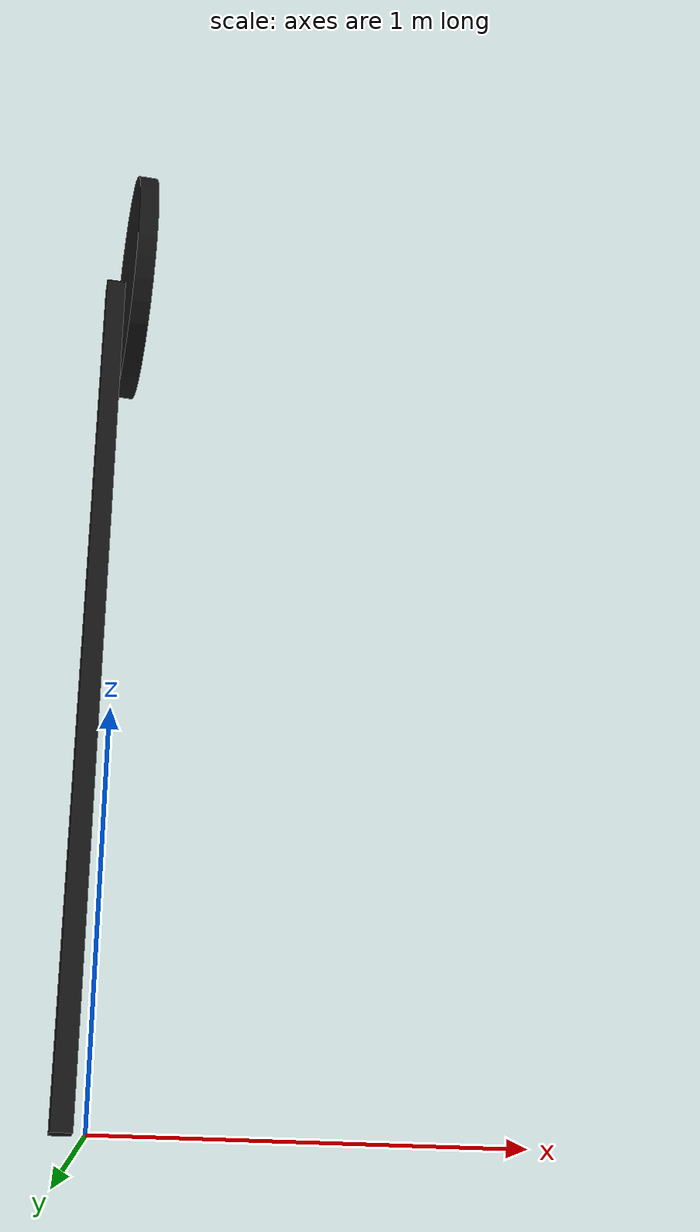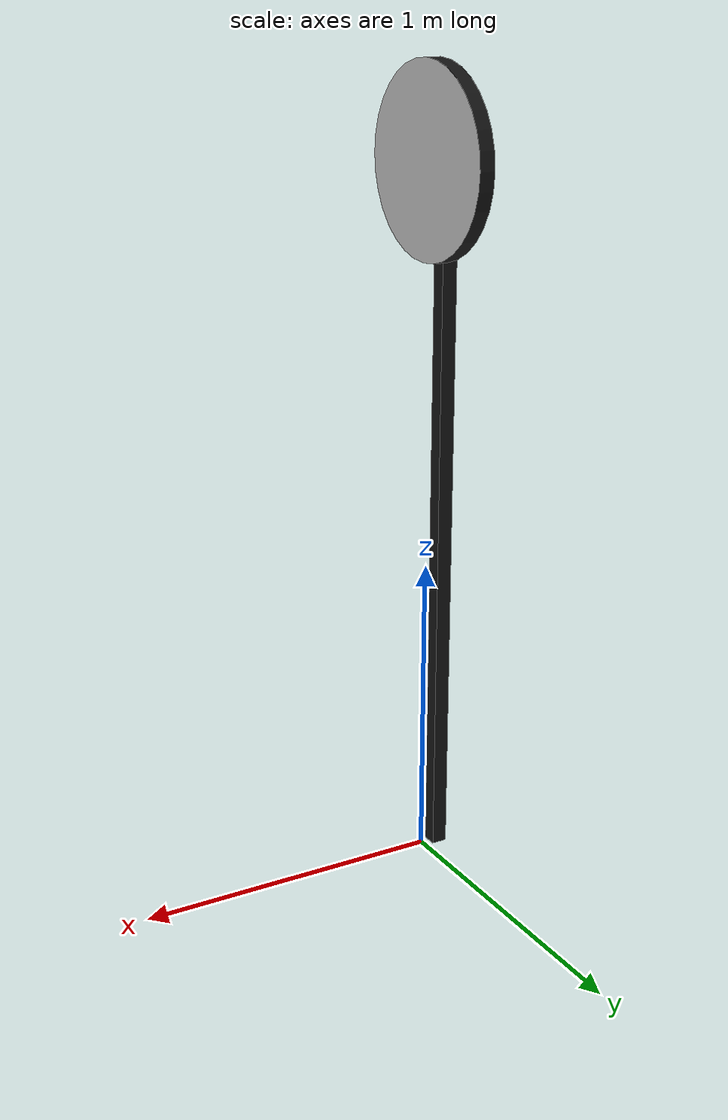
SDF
<?xml version="1.0" ?>
<sdf version="1.5">
  <model name="donel_kavsak_levha">
    <static>true</static>
    <link name="link">
      <collision name="collision">
        <geometry>
          <mesh>
            <uri>model://donel_kavsak_levha/meshes/donel_kavsak_levha.dae</uri>
          </mesh>
        </geometry>
      </collision>
      <visual name="visual">
        <geometry>
          <mesh>
            <uri>model://donel_kavsak_levha/meshes/donel_kavsak_levha.dae</uri>
          </mesh>
        </geometry>
      </visual>
    </link>
  </model>
</sdf>
